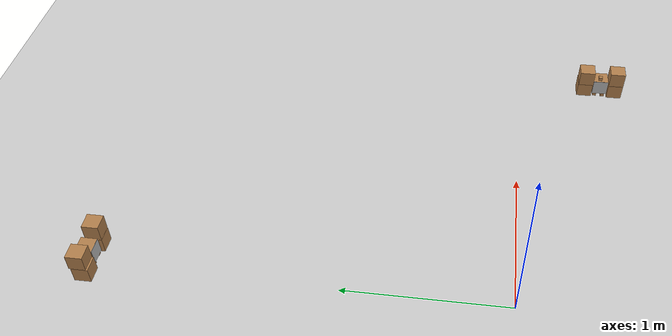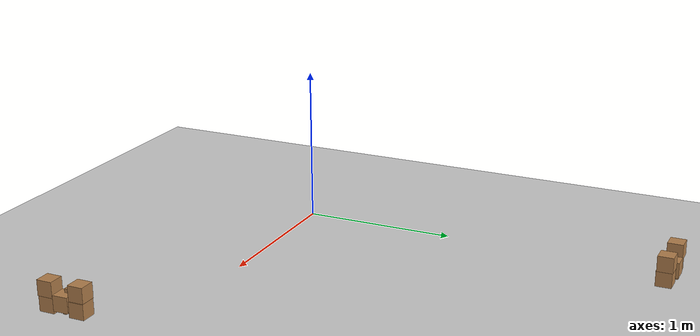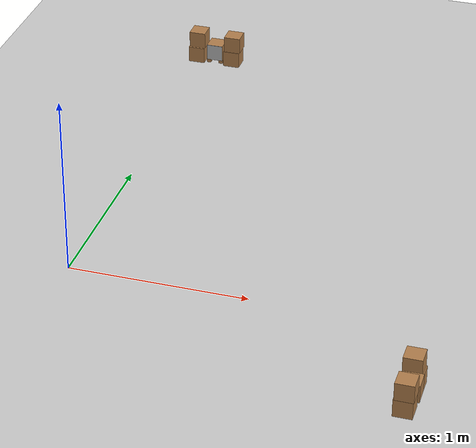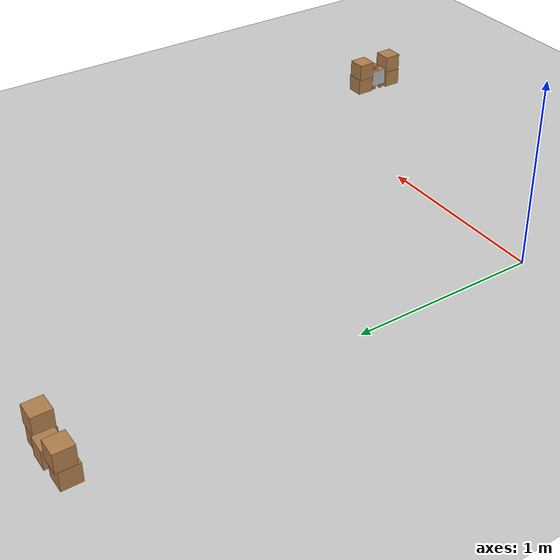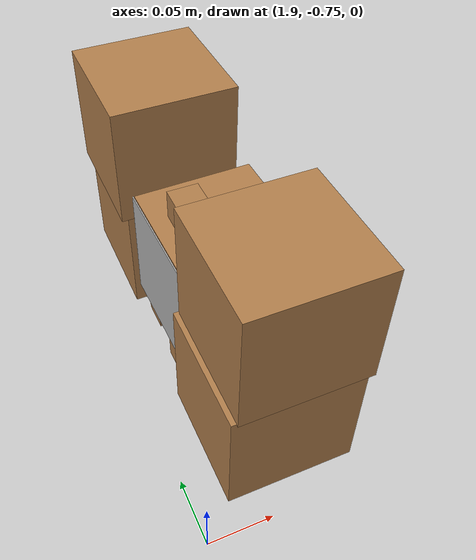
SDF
<sdf version="1.7">
 <world name="default">
  <model name="ground_plane">
   <static>1</static>
   <link name="link">
    <collision name="collision">
     <geometry><plane><normal>0 0 1</normal><size>100 100</size></plane></geometry>
     <surface>
      <contact><collide_bitmask>65535</collide_bitmask></contact>
      <friction><ode><mu>100</mu><mu2>50</mu2></ode></friction>
     </surface>
    </collision>
    <visual name="visual">
     <cast_shadows>0</cast_shadows>
     <geometry><plane><normal>0 0 1</normal><size>100 100</size></plane></geometry>
     <material>
      <script><uri>file://media/materials/scripts/gazebo.material</uri><name>Gazebo/Grey</name></script>
     </material>
    </visual>
   </link>
  </model>
  <light name="sun" type="directional">
   <pose>0 0 10 0 -0 0</pose>
   <diffuse>0.8 0.8 0.8 1</diffuse>
   <specular>0.2 0.2 0.2 1</specular>
   <attenuation>
    <range>1000</range>
    <constant>0.9</constant>
    <linear>0.01</linear>
    <quadratic>0.001</quadratic>
   </attenuation>
   <direction>-0.5 0.1 -0.9</direction>
   <spot><inner_angle>0</inner_angle><outer_angle>0</outer_angle><falloff>0</falloff></spot>
  </light>
  <scene><shadows>0</shadows><ambient>0.4 0.4 0.4 1</ambient><background>0.7 0.7 0.7 1</background></scene>
  <physics type="ode">
   <real_time_update_rate>1000</real_time_update_rate>
   <max_step_size>0.001</max_step_size>
   <real_time_factor>1</real_time_factor>
   <ode>
    <solver>
     <type>quick</type>
     <iters>150</iters>
     <precon_iters>0</precon_iters>
     <sor>1.4</sor>
     <use_dynamic_moi_rescaling>1</use_dynamic_moi_rescaling>
    </solver>
    <constraints>
     <cfm>1e-05</cfm>
     <erp>0.2</erp>
     <contact_max_correcting_vel>2000</contact_max_correcting_vel>
     <contact_surface_layer>0.01</contact_surface_layer>
    </constraints>
   </ode>
  </physics>
  <gravity>0 0 -9.8</gravity>
  <magnetic_field>6e-06 2.3e-05 -4.2e-05</magnetic_field>
  <atmosphere type="adiabatic"/>
  <audio><device>default</device></audio>
  <spherical_coordinates>
   <surface_model>EARTH_WGS84</surface_model>
   <latitude_deg>0</latitude_deg>
   <longitude_deg>0</longitude_deg>
   <elevation>0</elevation>
   <heading_deg>0</heading_deg>
  </spherical_coordinates>
  <model name="wood_cube_10cm_0">
   <link name="link">
    <pose>0 0 0.05 0 -0 0</pose>
    <inertial>
     <mass>0.5167</mass>
     <inertia>
      <ixx>0.000861167</ixx>
      <ixy>0</ixy>
      <ixz>0</ixz>
      <iyy>0.000861167</iyy>
      <iyz>0</iyz>
      <izz>0.000861167</izz>
     </inertia>
    </inertial>
    <collision name="collision">
     <geometry><box><size>0.1 0.1 0.1</size></box></geometry>
     <surface>
      <contact>
       <poissons_ratio>0.347</poissons_ratio>
       <elastic_modulus>8.8e+09</elastic_modulus>
       <ode><kp>100000</kp><kd>100</kd><max_vel>100</max_vel><min_depth>0.001</min_depth></ode>
      </contact>
      <friction>
       <torsional>
        <coefficient>1</coefficient>
        <use_patch_radius>0</use_patch_radius>
        <surface_radius>0.01</surface_radius>
       </torsional>
      </friction>
     </surface>
    </collision>
    <visual name="visual">
     <geometry><box><size>0.1 0.1 0.1</size></box></geometry>
     <material>
      <script><uri>file://media/materials/scripts/gazebo.material</uri><name>Gazebo/Wood</name></script>
     </material>
    </visual>
   </link>
   <pose>1.97604 -0.677174 -0.001025 8e-06 2e-05 0</pose>
  </model>
  <model name="wood_cube_10cm_1">
   <link name="link">
    <pose>0 0 0.05 0 -0 0</pose>
    <inertial>
     <mass>0.5167</mass>
     <inertia>
      <ixx>0.000861167</ixx>
      <ixy>0</ixy>
      <ixz>0</ixz>
      <iyy>0.000861167</iyy>
      <iyz>0</iyz>
      <izz>0.000861167</izz>
     </inertia>
    </inertial>
    <collision name="collision">
     <geometry><box><size>0.1 0.1 0.1</size></box></geometry>
     <surface>
      <contact>
       <poissons_ratio>0.347</poissons_ratio>
       <elastic_modulus>8.8e+09</elastic_modulus>
       <ode><kp>100000</kp><kd>100</kd><max_vel>100</max_vel><min_depth>0.001</min_depth></ode>
      </contact>
      <friction>
       <torsional>
        <coefficient>1</coefficient>
        <use_patch_radius>0</use_patch_radius>
        <surface_radius>0.01</surface_radius>
       </torsional>
      </friction>
     </surface>
    </collision>
    <visual name="visual">
     <geometry><box><size>0.1 0.1 0.1</size></box></geometry>
     <material>
      <script><uri>file://media/materials/scripts/gazebo.material</uri><name>Gazebo/Wood</name></script>
     </material>
    </visual>
   </link>
   <pose>1.97889 -0.468729 -0.001025 9e-06 -2.7e-05 -0</pose>
  </model>
  <model name="wood_cube_10cm_5">
   <link name="link">
    <pose>0 0 0.05 0 -0 0</pose>
    <inertial>
     <mass>0.5167</mass>
     <inertia>
      <ixx>0.000861167</ixx>
      <ixy>0</ixy>
      <ixz>0</ixz>
      <iyy>0.000861167</iyy>
      <iyz>0</iyz>
      <izz>0.000861167</izz>
     </inertia>
    </inertial>
    <collision name="collision">
     <geometry><box><size>0.1 0.1 0.1</size></box></geometry>
     <surface>
      <contact>
       <poissons_ratio>0.347</poissons_ratio>
       <elastic_modulus>8.8e+09</elastic_modulus>
       <ode><kp>100000</kp><kd>100</kd><max_vel>100</max_vel><min_depth>0.001</min_depth></ode>
      </contact>
      <friction>
       <torsional>
        <coefficient>1</coefficient>
        <use_patch_radius>0</use_patch_radius>
        <surface_radius>0.01</surface_radius>
       </torsional>
      </friction>
     </surface>
    </collision>
    <visual name="visual">
     <geometry><box><size>0.1 0.1 0.1</size></box></geometry>
     <material>
      <script><uri>file://media/materials/scripts/gazebo.material</uri><name>Gazebo/Wood</name></script>
     </material>
    </visual>
   </link>
   <pose>-0.063513 2.46621 -0.001025 -5.5e-05 1.4e-05 4e-06</pose>
  </model>
  <model name="wood_cube_10cm_7">
   <link name="link">
    <pose>0 0 0.05 0 -0 0</pose>
    <inertial>
     <mass>0.5167</mass>
     <inertia>
      <ixx>0.000861167</ixx>
      <ixy>0</ixy>
      <ixz>0</ixz>
      <iyy>0.000861167</iyy>
      <iyz>0</iyz>
      <izz>0.000861167</izz>
     </inertia>
    </inertial>
    <collision name="collision">
     <geometry><box><size>0.1 0.1 0.1</size></box></geometry>
     <surface>
      <contact>
       <poissons_ratio>0.347</poissons_ratio>
       <elastic_modulus>8.8e+09</elastic_modulus>
       <ode><kp>100000</kp><kd>100</kd><max_vel>100</max_vel><min_depth>0.001</min_depth></ode>
      </contact>
      <friction>
       <torsional>
        <coefficient>1</coefficient>
        <use_patch_radius>0</use_patch_radius>
        <surface_radius>0.01</surface_radius>
       </torsional>
      </friction>
     </surface>
    </collision>
    <visual name="visual">
     <geometry><box><size>0.1 0.1 0.1</size></box></geometry>
     <material>
      <script><uri>file://media/materials/scripts/gazebo.material</uri><name>Gazebo/Wood</name></script>
     </material>
    </visual>
   </link>
   <pose>0.164086 2.46543 -0.001025 -1.8e-05 2.5e-05 -0</pose>
  </model>
  <model name="wood_cube_10cm_8">
   <link name="link">
    <pose>0 0 0.05 0 -0 0</pose>
    <inertial>
     <mass>0.5167</mass>
     <inertia>
      <ixx>0.000861167</ixx>
      <ixy>0</ixy>
      <ixz>0</ixz>
      <iyy>0.000861167</iyy>
      <iyz>0</iyz>
      <izz>0.000861167</izz>
     </inertia>
    </inertial>
    <collision name="collision">
     <geometry><box><size>0.1 0.1 0.1</size></box></geometry>
     <surface>
      <contact>
       <poissons_ratio>0.347</poissons_ratio>
       <elastic_modulus>8.8e+09</elastic_modulus>
       <ode><kp>100000</kp><kd>100</kd><max_vel>100</max_vel><min_depth>0.001</min_depth></ode>
      </contact>
      <friction>
       <torsional>
        <coefficient>1</coefficient>
        <use_patch_radius>0</use_patch_radius>
        <surface_radius>0.01</surface_radius>
       </torsional>
      </friction>
     </surface>
    </collision>
    <visual name="visual">
     <geometry><box><size>0.1 0.1 0.1</size></box></geometry>
     <material>
      <script><uri>file://media/materials/scripts/gazebo.material</uri><name>Gazebo/Wood</name></script>
     </material>
    </visual>
   </link>
   <pose>-0.060672 2.47724 0.097968 -6.5e-05 1.6e-05 4e-06</pose>
  </model>
  <model name="wood_cube_10cm_9">
   <link name="link">
    <pose>0 0 0.05 0 -0 0</pose>
    <inertial>
     <mass>0.5167</mass>
     <inertia>
      <ixx>0.000861167</ixx>
      <ixy>0</ixy>
      <ixz>0</ixz>
      <iyy>0.000861167</iyy>
      <iyz>0</iyz>
      <izz>0.000861167</izz>
     </inertia>
    </inertial>
    <collision name="collision">
     <geometry><box><size>0.1 0.1 0.1</size></box></geometry>
     <surface>
      <contact>
       <poissons_ratio>0.347</poissons_ratio>
       <elastic_modulus>8.8e+09</elastic_modulus>
       <ode><kp>100000</kp><kd>100</kd><max_vel>100</max_vel><min_depth>0.001</min_depth></ode>
      </contact>
      <friction>
       <torsional>
        <coefficient>1</coefficient>
        <use_patch_radius>0</use_patch_radius>
        <surface_radius>0.01</surface_radius>
       </torsional>
      </friction>
     </surface>
    </collision>
    <visual name="visual">
     <geometry><box><size>0.1 0.1 0.1</size></box></geometry>
     <material>
      <script><uri>file://media/materials/scripts/gazebo.material</uri><name>Gazebo/Wood</name></script>
     </material>
    </visual>
   </link>
   <pose>0.169029 2.46903 0.097969 -2.1e-05 2.8e-05 0</pose>
  </model>
  <model name="wood_cube_10cm_10">
   <link name="link">
    <pose>0 0 0.05 0 -0 0</pose>
    <inertial>
     <mass>0.5167</mass>
     <inertia>
      <ixx>0.000861167</ixx>
      <ixy>0</ixy>
      <ixz>0</ixz>
      <iyy>0.000861167</iyy>
      <iyz>0</iyz>
      <izz>0.000861167</izz>
     </inertia>
    </inertial>
    <collision name="collision">
     <geometry><box><size>0.1 0.1 0.1</size></box></geometry>
     <surface>
      <contact>
       <poissons_ratio>0.347</poissons_ratio>
       <elastic_modulus>8.8e+09</elastic_modulus>
       <ode><kp>100000</kp><kd>100</kd><max_vel>100</max_vel><min_depth>0.001</min_depth></ode>
      </contact>
      <friction>
       <torsional>
        <coefficient>1</coefficient>
        <use_patch_radius>0</use_patch_radius>
        <surface_radius>0.01</surface_radius>
       </torsional>
      </friction>
     </surface>
    </collision>
    <visual name="visual">
     <geometry><box><size>0.1 0.1 0.1</size></box></geometry>
     <material>
      <script><uri>file://media/materials/scripts/gazebo.material</uri><name>Gazebo/Wood</name></script>
     </material>
    </visual>
    <visual name="aruco_face">
     <pose>0 0.051 0 0 -0 0</pose>
     <geometry><box><size>0.1 0.001 0.1</size></box></geometry>
     <material>
      <script>
       <uri>model://aruco_23/materials/scripts</uri>
       <uri>model://aruco_23/materials/textures</uri>
       <name>ArUco/marker23</name>
      </script>
      <lighting>0</lighting>
     </material>
    </visual>
   </link>
   <pose>0.052474 2.4819 0.023062 -0.000513 -0.001058 3.13372</pose>
  </model>
  <model name="wood_cube_2_5cm">
   <link name="link">
    <pose>0 0 0.0125 0 -0 0</pose>
    <inertial>
     <mass>0.0073</mass>
     <inertia>
      <ixx>7.60417e-07</ixx>
      <ixy>0</ixy>
      <ixz>0</ixz>
      <iyy>7.60417e-07</iyy>
      <iyz>0</iyz>
      <izz>7.60417e-07</izz>
     </inertia>
    </inertial>
    <collision name="collision">
     <geometry><box><size>0.025 0.025 0.025</size></box></geometry>
     <surface>
      <contact>
       <poissons_ratio>0.347</poissons_ratio>
       <elastic_modulus>8.8e+09</elastic_modulus>
       <ode><kp>100000</kp><kd>100</kd><max_vel>100</max_vel><min_depth>0.001</min_depth></ode>
      </contact>
      <friction>
       <torsional>
        <coefficient>1</coefficient>
        <use_patch_radius>0</use_patch_radius>
        <surface_radius>0.01</surface_radius>
       </torsional>
      </friction>
     </surface>
    </collision>
    <visual name="visual">
     <geometry><box><size>0.025 0.025 0.025</size></box></geometry>
     <material>
      <script><uri>file://media/materials/scripts/gazebo.material</uri><name>Gazebo/Wood</name></script>
     </material>
    </visual>
   </link>
   <pose>1.99092 -0.569134 -0.000946 0.00217 0.005007 -0.00065</pose>
  </model>
  <model name="wood_cube_2_5cm_0">
   <link name="link">
    <pose>0 0 0.0125 0 -0 0</pose>
    <inertial>
     <mass>0.0073</mass>
     <inertia>
      <ixx>7.60417e-07</ixx>
      <ixy>0</ixy>
      <ixz>0</ixz>
      <iyy>7.60417e-07</iyy>
      <iyz>0</iyz>
      <izz>7.60417e-07</izz>
     </inertia>
    </inertial>
    <collision name="collision">
     <geometry><box><size>0.025 0.025 0.025</size></box></geometry>
     <surface>
      <contact>
       <poissons_ratio>0.347</poissons_ratio>
       <elastic_modulus>8.8e+09</elastic_modulus>
       <ode><kp>100000</kp><kd>100</kd><max_vel>100</max_vel><min_depth>0.001</min_depth></ode>
      </contact>
      <friction>
       <torsional>
        <coefficient>1</coefficient>
        <use_patch_radius>0</use_patch_radius>
        <surface_radius>0.01</surface_radius>
       </torsional>
      </friction>
     </surface>
    </collision>
    <visual name="visual">
     <geometry><box><size>0.025 0.025 0.025</size></box></geometry>
     <material>
      <script><uri>file://media/materials/scripts/gazebo.material</uri><name>Gazebo/Wood</name></script>
     </material>
    </visual>
   </link>
   <pose>1.94805 -0.598341 -0.000942 0.000287 -0.004521 -3.6e-05</pose>
  </model>
  <model name="wood_cube_2_5cm_1">
   <link name="link">
    <pose>0 0 0.0125 0 -0 0</pose>
    <inertial>
     <mass>0.0073</mass>
     <inertia>
      <ixx>7.60417e-07</ixx>
      <ixy>0</ixy>
      <ixz>0</ixz>
      <iyy>7.60417e-07</iyy>
      <iyz>0</iyz>
      <izz>7.60417e-07</izz>
     </inertia>
    </inertial>
    <collision name="collision">
     <geometry><box><size>0.025 0.025 0.025</size></box></geometry>
     <surface>
      <contact>
       <poissons_ratio>0.347</poissons_ratio>
       <elastic_modulus>8.8e+09</elastic_modulus>
       <ode><kp>100000</kp><kd>100</kd><max_vel>100</max_vel><min_depth>0.001</min_depth></ode>
      </contact>
      <friction>
       <torsional>
        <coefficient>1</coefficient>
        <use_patch_radius>0</use_patch_radius>
        <surface_radius>0.01</surface_radius>
       </torsional>
      </friction>
     </surface>
    </collision>
    <visual name="visual">
     <geometry><box><size>0.025 0.025 0.025</size></box></geometry>
     <material>
      <script><uri>file://media/materials/scripts/gazebo.material</uri><name>Gazebo/Wood</name></script>
     </material>
    </visual>
   </link>
   <pose>1.95018 -0.54383 -0.000892 -2e-06 -0.009003 -0.000154</pose>
  </model>
  <model name="wood_cube_10cm">
   <link name="link">
    <pose>0 0 0.05 0 -0 0</pose>
    <inertial>
     <mass>0.5167</mass>
     <inertia>
      <ixx>0.000861167</ixx>
      <ixy>0</ixy>
      <ixz>0</ixz>
      <iyy>0.000861167</iyy>
      <iyz>0</iyz>
      <izz>0.000861167</izz>
     </inertia>
    </inertial>
    <collision name="collision">
     <geometry><box><size>0.1 0.1 0.1</size></box></geometry>
     <surface>
      <contact>
       <poissons_ratio>0.347</poissons_ratio>
       <elastic_modulus>8.8e+09</elastic_modulus>
       <ode><kp>100000</kp><kd>100</kd><max_vel>100</max_vel><min_depth>0.001</min_depth></ode>
      </contact>
      <friction>
       <torsional>
        <coefficient>1</coefficient>
        <use_patch_radius>0</use_patch_radius>
        <surface_radius>0.01</surface_radius>
       </torsional>
      </friction>
     </surface>
    </collision>
    <visual name="visual">
     <geometry><box><size>0.1 0.1 0.1</size></box></geometry>
     <material>
      <script><uri>file://media/materials/scripts/gazebo.material</uri><name>Gazebo/Wood</name></script>
     </material>
    </visual>
    <visual name="aruco_face">
     <pose>0 0.051 0 0 -0 0</pose>
     <geometry><box><size>0.1 0.001 0.1</size></box></geometry>
     <material>
      <script>
       <uri>model://aruco_23/materials/scripts</uri>
       <uri>model://aruco_23/materials/textures</uri>
       <name>ArUco/marker23</name>
      </script>
      <lighting>0</lighting>
     </material>
    </visual>
   </link>
   <pose>1.98513 -0.572219 0.023071 0.004779 -0.002238 1.5939</pose>
  </model>
  <model name="wood_cube_2_5cm_2">
   <link name="link">
    <pose>0 0 0.0125 0 -0 0</pose>
    <inertial>
     <mass>0.0073</mass>
     <inertia>
      <ixx>7.60417e-07</ixx>
      <ixy>0</ixy>
      <ixz>0</ixz>
      <iyy>7.60417e-07</iyy>
      <iyz>0</iyz>
      <izz>7.60417e-07</izz>
     </inertia>
    </inertial>
    <collision name="collision">
     <geometry><box><size>0.025 0.025 0.025</size></box></geometry>
     <surface>
      <contact>
       <poissons_ratio>0.347</poissons_ratio>
       <elastic_modulus>8.8e+09</elastic_modulus>
       <ode><kp>100000</kp><kd>100</kd><max_vel>100</max_vel><min_depth>0.001</min_depth></ode>
      </contact>
      <friction>
       <torsional>
        <coefficient>1</coefficient>
        <use_patch_radius>0</use_patch_radius>
        <surface_radius>0.01</surface_radius>
       </torsional>
      </friction>
     </surface>
    </collision>
    <visual name="visual">
     <geometry><box><size>0.025 0.025 0.025</size></box></geometry>
     <material>
      <script><uri>file://media/materials/scripts/gazebo.material</uri><name>Gazebo/Wood</name></script>
     </material>
    </visual>
   </link>
   <pose>1.96299 -0.567915 0.122365 -0.003845 0.001299 -0.000141</pose>
  </model>
  <model name="wood_cube_10cm_2">
   <link name="link">
    <pose>0 0 0.05 0 -0 0</pose>
    <inertial>
     <mass>0.5167</mass>
     <inertia>
      <ixx>0.000861167</ixx>
      <ixy>0</ixy>
      <ixz>0</ixz>
      <iyy>0.000861167</iyy>
      <iyz>0</iyz>
      <izz>0.000861167</izz>
     </inertia>
    </inertial>
    <collision name="collision">
     <geometry><box><size>0.1 0.1 0.1</size></box></geometry>
     <surface>
      <contact>
       <poissons_ratio>0.347</poissons_ratio>
       <elastic_modulus>8.8e+09</elastic_modulus>
       <ode><kp>100000</kp><kd>100</kd><max_vel>100</max_vel><min_depth>0.001</min_depth></ode>
      </contact>
      <friction>
       <torsional>
        <coefficient>1</coefficient>
        <use_patch_radius>0</use_patch_radius>
        <surface_radius>0.01</surface_radius>
       </torsional>
      </friction>
     </surface>
    </collision>
    <visual name="visual">
     <geometry><box><size>0.1 0.1 0.1</size></box></geometry>
     <material>
      <script><uri>file://media/materials/scripts/gazebo.material</uri><name>Gazebo/Wood</name></script>
     </material>
    </visual>
   </link>
   <pose>1.97341 -0.470508 0.097969 1e-05 -3.2e-05 -0</pose>
  </model>
  <model name="wood_cube_10cm_3">
   <link name="link">
    <pose>0 0 0.05 0 -0 0</pose>
    <inertial>
     <mass>0.5167</mass>
     <inertia>
      <ixx>0.000861167</ixx>
      <ixy>0</ixy>
      <ixz>0</ixz>
      <iyy>0.000861167</iyy>
      <iyz>0</iyz>
      <izz>0.000861167</izz>
     </inertia>
    </inertial>
    <collision name="collision">
     <geometry><box><size>0.1 0.1 0.1</size></box></geometry>
     <surface>
      <contact>
       <poissons_ratio>0.347</poissons_ratio>
       <elastic_modulus>8.8e+09</elastic_modulus>
       <ode><kp>100000</kp><kd>100</kd><max_vel>100</max_vel><min_depth>0.001</min_depth></ode>
      </contact>
      <friction>
       <torsional>
        <coefficient>1</coefficient>
        <use_patch_radius>0</use_patch_radius>
        <surface_radius>0.01</surface_radius>
       </torsional>
      </friction>
     </surface>
    </collision>
    <visual name="visual">
     <geometry><box><size>0.1 0.1 0.1</size></box></geometry>
     <material>
      <script><uri>file://media/materials/scripts/gazebo.material</uri><name>Gazebo/Wood</name></script>
     </material>
    </visual>
   </link>
   <pose>1.98003 -0.678718 0.097969 9e-06 2.3e-05 -0</pose>
  </model>
  <model name="wood_cube_2_5cm_3">
   <link name="link">
    <pose>0 0 0.0125 0 -0 0</pose>
    <inertial>
     <mass>0.0073</mass>
     <inertia>
      <ixx>7.60417e-07</ixx>
      <ixy>0</ixy>
      <ixz>0</ixz>
      <iyy>7.60417e-07</iyy>
      <iyz>0</iyz>
      <izz>7.60417e-07</izz>
     </inertia>
    </inertial>
    <collision name="collision">
     <geometry><box><size>0.025 0.025 0.025</size></box></geometry>
     <surface>
      <contact>
       <poissons_ratio>0.347</poissons_ratio>
       <elastic_modulus>8.8e+09</elastic_modulus>
       <ode><kp>100000</kp><kd>100</kd><max_vel>100</max_vel><min_depth>0.001</min_depth></ode>
      </contact>
      <friction>
       <torsional>
        <coefficient>1</coefficient>
        <use_patch_radius>0</use_patch_radius>
        <surface_radius>0.01</surface_radius>
       </torsional>
      </friction>
     </surface>
    </collision>
    <visual name="visual">
     <geometry><box><size>0.025 0.025 0.025</size></box></geometry>
     <material>
      <script><uri>file://media/materials/scripts/gazebo.material</uri><name>Gazebo/Wood</name></script>
     </material>
    </visual>
   </link>
   <pose>0.012364 2.44887 -0.000959 0.003881 0.00014 -4.5e-05</pose>
  </model>
  <model name="wood_cube_2_5cm_4">
   <link name="link">
    <pose>0 0 0.0125 0 -0 0</pose>
    <inertial>
     <mass>0.0073</mass>
     <inertia>
      <ixx>7.60417e-07</ixx>
      <ixy>0</ixy>
      <ixz>0</ixz>
      <iyy>7.60417e-07</iyy>
      <iyz>0</iyz>
      <izz>7.60417e-07</izz>
     </inertia>
    </inertial>
    <collision name="collision">
     <geometry><box><size>0.025 0.025 0.025</size></box></geometry>
     <surface>
      <contact>
       <poissons_ratio>0.347</poissons_ratio>
       <elastic_modulus>8.8e+09</elastic_modulus>
       <ode><kp>100000</kp><kd>100</kd><max_vel>100</max_vel><min_depth>0.001</min_depth></ode>
      </contact>
      <friction>
       <torsional>
        <coefficient>1</coefficient>
        <use_patch_radius>0</use_patch_radius>
        <surface_radius>0.01</surface_radius>
       </torsional>
      </friction>
     </surface>
    </collision>
    <visual name="visual">
     <geometry><box><size>0.025 0.025 0.025</size></box></geometry>
     <material>
      <script><uri>file://media/materials/scripts/gazebo.material</uri><name>Gazebo/Wood</name></script>
     </material>
    </visual>
   </link>
   <pose>0.051941 2.51169 -0.000965 -0.003628 0.001118 -8.9e-05</pose>
  </model>
  <model name="wood_cube_2_5cm_5">
   <link name="link">
    <pose>0 0 0.0125 0 -0 0</pose>
    <inertial>
     <mass>0.0073</mass>
     <inertia>
      <ixx>7.60417e-07</ixx>
      <ixy>0</ixy>
      <ixz>0</ixz>
      <iyy>7.60417e-07</iyy>
      <iyz>0</iyz>
      <izz>7.60417e-07</izz>
     </inertia>
    </inertial>
    <collision name="collision">
     <geometry><box><size>0.025 0.025 0.025</size></box></geometry>
     <surface>
      <contact>
       <poissons_ratio>0.347</poissons_ratio>
       <elastic_modulus>8.8e+09</elastic_modulus>
       <ode><kp>100000</kp><kd>100</kd><max_vel>100</max_vel><min_depth>0.001</min_depth></ode>
      </contact>
      <friction>
       <torsional>
        <coefficient>1</coefficient>
        <use_patch_radius>0</use_patch_radius>
        <surface_radius>0.01</surface_radius>
       </torsional>
      </friction>
     </surface>
    </collision>
    <visual name="visual">
     <geometry><box><size>0.025 0.025 0.025</size></box></geometry>
     <material>
      <script><uri>file://media/materials/scripts/gazebo.material</uri><name>Gazebo/Wood</name></script>
     </material>
    </visual>
   </link>
   <pose>0.088319 2.4522 -0.000998 0.00052 0.00023 -0.00021</pose>
  </model>
 </world>
</sdf>
